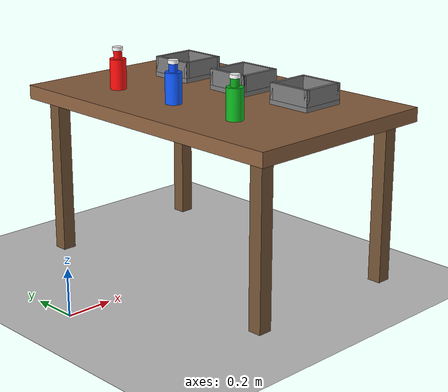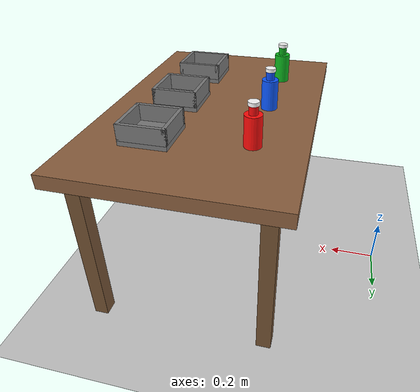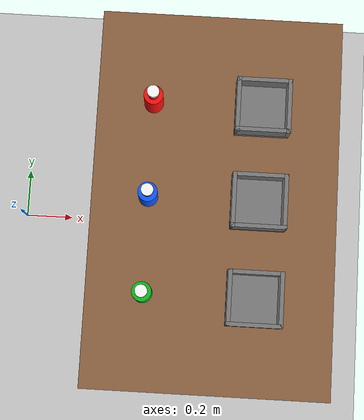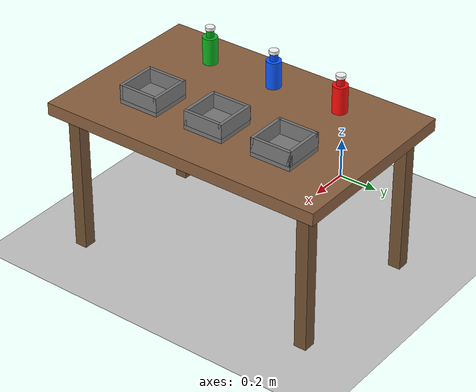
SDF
<sdf version='1.10'>
  <world name='table_bottles_boxes'>
    <physics name='1ms' type='ignored'>
      <max_step_size>0.01</max_step_size>
      <real_time_factor>1</real_time_factor>
      <real_time_update_rate>100</real_time_update_rate>
    </physics>

    <plugin name='gz::sim::systems::Physics' filename='gz-sim-physics-system'/>
    <plugin name='gz::sim::systems::UserCommands' filename='gz-sim-user-commands-system'/>
    <plugin name='gz::sim::systems::SceneBroadcaster' filename='gz-sim-scene-broadcaster-system'/>
    <plugin name='gz::sim::systems::Contact' filename='gz-sim-contact-system'/>
    <plugin name='gz::sim::systems::Sensors' filename='gz-sim-sensors-system'>
      <render_engine>ogre2</render_engine>
    </plugin>

    <gravity>0 0 -9.8</gravity>
    <magnetic_field>5.5645e-06 2.28758e-05 -4.23884e-05</magnetic_field>
    <atmosphere type='adiabatic'/>

    <scene>
      <ambient>0.45 0.45 0.45 1</ambient>
      <background>0.72 0.74 0.78 1</background>
      <shadows>true</shadows>
    </scene>

    <light name='sun' type='directional'>
      <pose>0 0 10 0 0 0</pose>
      <cast_shadows>true</cast_shadows>
      <intensity>1</intensity>
      <direction>-0.5 0.1 -0.9</direction>
      <diffuse>0.8 0.8 0.8 1</diffuse>
      <specular>0.2 0.2 0.2 1</specular>
      <attenuation>
        <range>1000</range>
        <linear>0.01</linear>
        <constant>0.9</constant>
        <quadratic>0.001</quadratic>
      </attenuation>
    </light>

    <model name='ground_plane'>
      <static>true</static>
      <pose>0 0 0 0 0 0</pose>
      <link name='link'>
        <collision name='collision'>
          <geometry>
            <plane>
              <normal>0 0 1</normal>
              <size>100 100</size>
            </plane>
          </geometry>
        </collision>
        <visual name='visual'>
          <geometry>
            <plane>
              <normal>0 0 1</normal>
              <size>100 100</size>
            </plane>
          </geometry>
          <material>
            <ambient>0.78 0.78 0.78 1</ambient>
            <diffuse>0.78 0.78 0.78 1</diffuse>
            <specular>0.35 0.35 0.35 1</specular>
          </material>
        </visual>
      </link>
    </model>

    <model name='table'>
      <static>true</static>
      <pose>0.8 0 0 0 0 0</pose>

      <link name='top'>
        <pose>0 0 0.72 0 0 0</pose>
        <collision name='collision'>
          <geometry>
            <box>
              <size>0.9 1.4 0.06</size>
            </box>
          </geometry>
        </collision>
        <visual name='visual'>
          <geometry>
            <box>
              <size>0.9 1.4 0.06</size>
            </box>
          </geometry>
          <material>
            <ambient>0.45 0.32 0.22 1</ambient>
            <diffuse>0.55 0.38 0.25 1</diffuse>
            <specular>0.15 0.1 0.07 1</specular>
          </material>
        </visual>
      </link>

      <link name='leg_front_left'>
        <pose>0.36 0.61 0.36 0 0 0</pose>
        <collision name='collision'>
          <geometry>
            <box>
              <size>0.06 0.06 0.72</size>
            </box>
          </geometry>
        </collision>
        <visual name='visual'>
          <geometry>
            <box>
              <size>0.06 0.06 0.72</size>
            </box>
          </geometry>
          <material>
            <ambient>0.36 0.25 0.16 1</ambient>
            <diffuse>0.45 0.32 0.2 1</diffuse>
          </material>
        </visual>
      </link>

      <link name='leg_front_right'>
        <pose>0.36 -0.61 0.36 0 0 0</pose>
        <collision name='collision'>
          <geometry>
            <box>
              <size>0.06 0.06 0.72</size>
            </box>
          </geometry>
        </collision>
        <visual name='visual'>
          <geometry>
            <box>
              <size>0.06 0.06 0.72</size>
            </box>
          </geometry>
          <material>
            <ambient>0.36 0.25 0.16 1</ambient>
            <diffuse>0.45 0.32 0.2 1</diffuse>
          </material>
        </visual>
      </link>

      <link name='leg_back_left'>
        <pose>-0.36 0.61 0.36 0 0 0</pose>
        <collision name='collision'>
          <geometry>
            <box>
              <size>0.06 0.06 0.72</size>
            </box>
          </geometry>
        </collision>
        <visual name='visual'>
          <geometry>
            <box>
              <size>0.06 0.06 0.72</size>
            </box>
          </geometry>
          <material>
            <ambient>0.36 0.25 0.16 1</ambient>
            <diffuse>0.45 0.32 0.2 1</diffuse>
          </material>
        </visual>
      </link>

      <link name='leg_back_right'>
        <pose>-0.36 -0.61 0.36 0 0 0</pose>
        <collision name='collision'>
          <geometry>
            <box>
              <size>0.06 0.06 0.72</size>
            </box>
          </geometry>
        </collision>
        <visual name='visual'>
          <geometry>
            <box>
              <size>0.06 0.06 0.72</size>
            </box>
          </geometry>
          <material>
            <ambient>0.36 0.25 0.16 1</ambient>
            <diffuse>0.45 0.32 0.2 1</diffuse>
          </material>
        </visual>
      </link>
    </model>

    <model name='red_bottle'>
      <pose>0.56 0.35 0 0 0 0</pose>
      <link name='body'>
        <inertial>
          <mass>0.1</mass>
          <inertia>
            <ixx>0.00024</ixx>
            <iyy>0.00024</iyy>
            <izz>0.00006</izz>
          </inertia>
        </inertial>
        <collision name='body_collision'>
          <pose>0 0 0.825 0 0 0</pose>
          <geometry>
            <cylinder>
              <radius>0.035</radius>
              <length>0.13</length>
            </cylinder>
          </geometry>
        </collision>
        <visual name='body_visual'>
          <pose>0 0 0.825 0 0 0</pose>
          <geometry>
            <cylinder>
              <radius>0.035</radius>
              <length>0.13</length>
            </cylinder>
          </geometry>
          <material>
            <ambient>0.8 0.04 0.04 1</ambient>
            <diffuse>1.0 0.05 0.04 1</diffuse>
            <specular>0.6 0.35 0.35 1</specular>
          </material>
        </visual>
        <collision name='neck_collision'>
          <pose>0 0 0.9075 0 0 0</pose>
          <geometry>
            <cylinder>
              <radius>0.018</radius>
              <length>0.035</length>
            </cylinder>
          </geometry>
        </collision>
        <visual name='neck_visual'>
          <pose>0 0 0.9075 0 0 0</pose>
          <geometry>
            <cylinder>
              <radius>0.018</radius>
              <length>0.035</length>
            </cylinder>
          </geometry>
          <material>
            <ambient>0.75 0.03 0.03 1</ambient>
            <diffuse>0.95 0.04 0.04 1</diffuse>
            <specular>0.6 0.35 0.35 1</specular>
          </material>
        </visual>
        <collision name='cap_collision'>
          <pose>0 0 0.9325 0 0 0</pose>
          <geometry>
            <cylinder>
              <radius>0.022</radius>
              <length>0.015</length>
            </cylinder>
          </geometry>
        </collision>
        <visual name='cap_visual'>
          <pose>0 0 0.9325 0 0 0</pose>
          <geometry>
            <cylinder>
              <radius>0.022</radius>
              <length>0.015</length>
            </cylinder>
          </geometry>
          <material>
            <ambient>0.95 0.95 0.95 1</ambient>
            <diffuse>1.0 1.0 1.0 1</diffuse>
            <specular>0.35 0.35 0.35 1</specular>
          </material>
        </visual>
      </link>
    </model>

    <model name='blue_bottle'>
      <pose>0.56 0 0 0 0 0</pose>
      <link name='body'>
        <inertial>
          <mass>0.1</mass>
          <inertia>
            <ixx>0.00024</ixx>
            <iyy>0.00024</iyy>
            <izz>0.00006</izz>
          </inertia>
        </inertial>
        <collision name='body_collision'>
          <pose>0 0 0.825 0 0 0</pose>
          <geometry>
            <cylinder>
              <radius>0.035</radius>
              <length>0.13</length>
            </cylinder>
          </geometry>
        </collision>
        <visual name='body_visual'>
          <pose>0 0 0.825 0 0 0</pose>
          <geometry>
            <cylinder>
              <radius>0.035</radius>
              <length>0.13</length>
            </cylinder>
          </geometry>
          <material>
            <ambient>0.05 0.22 0.9 1</ambient>
            <diffuse>0.05 0.35 1.0 1</diffuse>
            <specular>0.6 0.6 0.8 1</specular>
          </material>
        </visual>
        <collision name='neck_collision'>
          <pose>0 0 0.9075 0 0 0</pose>
          <geometry>
            <cylinder>
              <radius>0.018</radius>
              <length>0.035</length>
            </cylinder>
          </geometry>
        </collision>
        <visual name='neck_visual'>
          <pose>0 0 0.9075 0 0 0</pose>
          <geometry>
            <cylinder>
              <radius>0.018</radius>
              <length>0.035</length>
            </cylinder>
          </geometry>
          <material>
            <ambient>0.04 0.2 0.8 1</ambient>
            <diffuse>0.04 0.3 0.95 1</diffuse>
            <specular>0.6 0.6 0.8 1</specular>
          </material>
        </visual>
        <collision name='cap_collision'>
          <pose>0 0 0.9325 0 0 0</pose>
          <geometry>
            <cylinder>
              <radius>0.022</radius>
              <length>0.015</length>
            </cylinder>
          </geometry>
        </collision>
        <visual name='cap_visual'>
          <pose>0 0 0.9325 0 0 0</pose>
          <geometry>
            <cylinder>
              <radius>0.022</radius>
              <length>0.015</length>
            </cylinder>
          </geometry>
          <material>
            <ambient>0.95 0.95 0.95 1</ambient>
            <diffuse>1.0 1.0 1.0 1</diffuse>
            <specular>0.35 0.35 0.35 1</specular>
          </material>
        </visual>
      </link>
    </model>

    <model name='green_bottle'>
      <pose>0.56 -0.35 0 0 0 0</pose>
      <link name='body'>
        <inertial>
          <mass>0.1</mass>
          <inertia>
            <ixx>0.00024</ixx>
            <iyy>0.00024</iyy>
            <izz>0.00006</izz>
          </inertia>
        </inertial>
        <collision name='body_collision'>
          <pose>0 0 0.825 0 0 0</pose>
          <geometry>
            <cylinder>
              <radius>0.035</radius>
              <length>0.13</length>
            </cylinder>
          </geometry>
        </collision>
        <visual name='body_visual'>
          <pose>0 0 0.825 0 0 0</pose>
          <geometry>
            <cylinder>
              <radius>0.035</radius>
              <length>0.13</length>
            </cylinder>
          </geometry>
          <material>
            <ambient>0.04 0.45 0.08 1</ambient>
            <diffuse>0.05 0.72 0.12 1</diffuse>
            <specular>0.35 0.6 0.35 1</specular>
          </material>
        </visual>
        <collision name='neck_collision'>
          <pose>0 0 0.9075 0 0 0</pose>
          <geometry>
            <cylinder>
              <radius>0.018</radius>
              <length>0.035</length>
            </cylinder>
          </geometry>
        </collision>
        <visual name='neck_visual'>
          <pose>0 0 0.9075 0 0 0</pose>
          <geometry>
            <cylinder>
              <radius>0.018</radius>
              <length>0.035</length>
            </cylinder>
          </geometry>
          <material>
            <ambient>0.03 0.4 0.07 1</ambient>
            <diffuse>0.04 0.65 0.1 1</diffuse>
            <specular>0.35 0.6 0.35 1</specular>
          </material>
        </visual>
        <collision name='cap_collision'>
          <pose>0 0 0.9325 0 0 0</pose>
          <geometry>
            <cylinder>
              <radius>0.022</radius>
              <length>0.015</length>
            </cylinder>
          </geometry>
        </collision>
        <visual name='cap_visual'>
          <pose>0 0 0.9325 0 0 0</pose>
          <geometry>
            <cylinder>
              <radius>0.022</radius>
              <length>0.015</length>
            </cylinder>
          </geometry>
          <material>
            <ambient>0.95 0.95 0.95 1</ambient>
            <diffuse>1.0 1.0 1.0 1</diffuse>
            <specular>0.35 0.35 0.35 1</specular>
          </material>
        </visual>
      </link>
    </model>

    <model name='front_box_left'>
      <static>true</static>
      <pose>0.96 0.35 0 0 0 0</pose>
      <link name='tray'>
        <collision name='bottom_collision'>
          <pose>0 0 0.76 0 0 0</pose>
          <geometry><box><size>0.2 0.2 0.02</size></box></geometry>
        </collision>
        <visual name='bottom_visual'>
          <pose>0 0 0.76 0 0 0</pose>
          <geometry><box><size>0.2 0.2 0.02</size></box></geometry>
          <material>
            <ambient>0.36 0.36 0.36 1</ambient>
            <diffuse>0.48 0.48 0.48 1</diffuse>
            <specular>0.2 0.2 0.2 1</specular>
          </material>
        </visual>
        <collision name='front_wall_collision'>
          <pose>-0.0925 0 0.805 0 0 0</pose>
          <geometry><box><size>0.015 0.2 0.07</size></box></geometry>
        </collision>
        <visual name='front_wall_visual'>
          <pose>-0.0925 0 0.805 0 0 0</pose>
          <geometry><box><size>0.015 0.2 0.07</size></box></geometry>
          <material>
            <ambient>0.36 0.36 0.36 1</ambient>
            <diffuse>0.48 0.48 0.48 1</diffuse>
          </material>
        </visual>
        <collision name='back_wall_collision'>
          <pose>0.0925 0 0.805 0 0 0</pose>
          <geometry><box><size>0.015 0.2 0.07</size></box></geometry>
        </collision>
        <visual name='back_wall_visual'>
          <pose>0.0925 0 0.805 0 0 0</pose>
          <geometry><box><size>0.015 0.2 0.07</size></box></geometry>
          <material>
            <ambient>0.36 0.36 0.36 1</ambient>
            <diffuse>0.48 0.48 0.48 1</diffuse>
          </material>
        </visual>
        <collision name='left_wall_collision'>
          <pose>0 0.0925 0.805 0 0 0</pose>
          <geometry><box><size>0.2 0.015 0.07</size></box></geometry>
        </collision>
        <visual name='left_wall_visual'>
          <pose>0 0.0925 0.805 0 0 0</pose>
          <geometry><box><size>0.2 0.015 0.07</size></box></geometry>
          <material>
            <ambient>0.36 0.36 0.36 1</ambient>
            <diffuse>0.48 0.48 0.48 1</diffuse>
          </material>
        </visual>
        <collision name='right_wall_collision'>
          <pose>0 -0.0925 0.805 0 0 0</pose>
          <geometry><box><size>0.2 0.015 0.07</size></box></geometry>
        </collision>
        <visual name='right_wall_visual'>
          <pose>0 -0.0925 0.805 0 0 0</pose>
          <geometry><box><size>0.2 0.015 0.07</size></box></geometry>
          <material>
            <ambient>0.36 0.36 0.36 1</ambient>
            <diffuse>0.48 0.48 0.48 1</diffuse>
          </material>
        </visual>
      </link>
    </model>

    <model name='front_box_center'>
      <static>true</static>
      <pose>0.96 0 0 0 0 0</pose>
      <link name='tray'>
        <collision name='bottom_collision'>
          <pose>0 0 0.76 0 0 0</pose>
          <geometry><box><size>0.2 0.2 0.02</size></box></geometry>
        </collision>
        <visual name='bottom_visual'>
          <pose>0 0 0.76 0 0 0</pose>
          <geometry><box><size>0.2 0.2 0.02</size></box></geometry>
          <material>
            <ambient>0.36 0.36 0.36 1</ambient>
            <diffuse>0.48 0.48 0.48 1</diffuse>
            <specular>0.2 0.2 0.2 1</specular>
          </material>
        </visual>
        <collision name='front_wall_collision'>
          <pose>-0.0925 0 0.805 0 0 0</pose>
          <geometry><box><size>0.015 0.2 0.07</size></box></geometry>
        </collision>
        <visual name='front_wall_visual'>
          <pose>-0.0925 0 0.805 0 0 0</pose>
          <geometry><box><size>0.015 0.2 0.07</size></box></geometry>
          <material>
            <ambient>0.36 0.36 0.36 1</ambient>
            <diffuse>0.48 0.48 0.48 1</diffuse>
          </material>
        </visual>
        <collision name='back_wall_collision'>
          <pose>0.0925 0 0.805 0 0 0</pose>
          <geometry><box><size>0.015 0.2 0.07</size></box></geometry>
        </collision>
        <visual name='back_wall_visual'>
          <pose>0.0925 0 0.805 0 0 0</pose>
          <geometry><box><size>0.015 0.2 0.07</size></box></geometry>
          <material>
            <ambient>0.36 0.36 0.36 1</ambient>
            <diffuse>0.48 0.48 0.48 1</diffuse>
          </material>
        </visual>
        <collision name='left_wall_collision'>
          <pose>0 0.0925 0.805 0 0 0</pose>
          <geometry><box><size>0.2 0.015 0.07</size></box></geometry>
        </collision>
        <visual name='left_wall_visual'>
          <pose>0 0.0925 0.805 0 0 0</pose>
          <geometry><box><size>0.2 0.015 0.07</size></box></geometry>
          <material>
            <ambient>0.36 0.36 0.36 1</ambient>
            <diffuse>0.48 0.48 0.48 1</diffuse>
          </material>
        </visual>
        <collision name='right_wall_collision'>
          <pose>0 -0.0925 0.805 0 0 0</pose>
          <geometry><box><size>0.2 0.015 0.07</size></box></geometry>
        </collision>
        <visual name='right_wall_visual'>
          <pose>0 -0.0925 0.805 0 0 0</pose>
          <geometry><box><size>0.2 0.015 0.07</size></box></geometry>
          <material>
            <ambient>0.36 0.36 0.36 1</ambient>
            <diffuse>0.48 0.48 0.48 1</diffuse>
          </material>
        </visual>
      </link>
    </model>

    <model name='front_box_right'>
      <static>true</static>
      <pose>0.96 -0.35 0 0 0 0</pose>
      <link name='tray'>
        <collision name='bottom_collision'>
          <pose>0 0 0.76 0 0 0</pose>
          <geometry><box><size>0.2 0.2 0.02</size></box></geometry>
        </collision>
        <visual name='bottom_visual'>
          <pose>0 0 0.76 0 0 0</pose>
          <geometry><box><size>0.2 0.2 0.02</size></box></geometry>
          <material>
            <ambient>0.36 0.36 0.36 1</ambient>
            <diffuse>0.48 0.48 0.48 1</diffuse>
            <specular>0.2 0.2 0.2 1</specular>
          </material>
        </visual>
        <collision name='front_wall_collision'>
          <pose>-0.0925 0 0.805 0 0 0</pose>
          <geometry><box><size>0.015 0.2 0.07</size></box></geometry>
        </collision>
        <visual name='front_wall_visual'>
          <pose>-0.0925 0 0.805 0 0 0</pose>
          <geometry><box><size>0.015 0.2 0.07</size></box></geometry>
          <material>
            <ambient>0.36 0.36 0.36 1</ambient>
            <diffuse>0.48 0.48 0.48 1</diffuse>
          </material>
        </visual>
        <collision name='back_wall_collision'>
          <pose>0.0925 0 0.805 0 0 0</pose>
          <geometry><box><size>0.015 0.2 0.07</size></box></geometry>
        </collision>
        <visual name='back_wall_visual'>
          <pose>0.0925 0 0.805 0 0 0</pose>
          <geometry><box><size>0.015 0.2 0.07</size></box></geometry>
          <material>
            <ambient>0.36 0.36 0.36 1</ambient>
            <diffuse>0.48 0.48 0.48 1</diffuse>
          </material>
        </visual>
        <collision name='left_wall_collision'>
          <pose>0 0.0925 0.805 0 0 0</pose>
          <geometry><box><size>0.2 0.015 0.07</size></box></geometry>
        </collision>
        <visual name='left_wall_visual'>
          <pose>0 0.0925 0.805 0 0 0</pose>
          <geometry><box><size>0.2 0.015 0.07</size></box></geometry>
          <material>
            <ambient>0.36 0.36 0.36 1</ambient>
            <diffuse>0.48 0.48 0.48 1</diffuse>
          </material>
        </visual>
        <collision name='right_wall_collision'>
          <pose>0 -0.0925 0.805 0 0 0</pose>
          <geometry><box><size>0.2 0.015 0.07</size></box></geometry>
        </collision>
        <visual name='right_wall_visual'>
          <pose>0 -0.0925 0.805 0 0 0</pose>
          <geometry><box><size>0.2 0.015 0.07</size></box></geometry>
          <material>
            <ambient>0.36 0.36 0.36 1</ambient>
            <diffuse>0.48 0.48 0.48 1</diffuse>
          </material>
        </visual>
      </link>
    </model>

    <gui>
      <camera name='user_camera'>
        <pose>2.7 -2.0 1.8 0 0.52 2.35</pose>
      </camera>
    </gui>
  </world>
</sdf>
